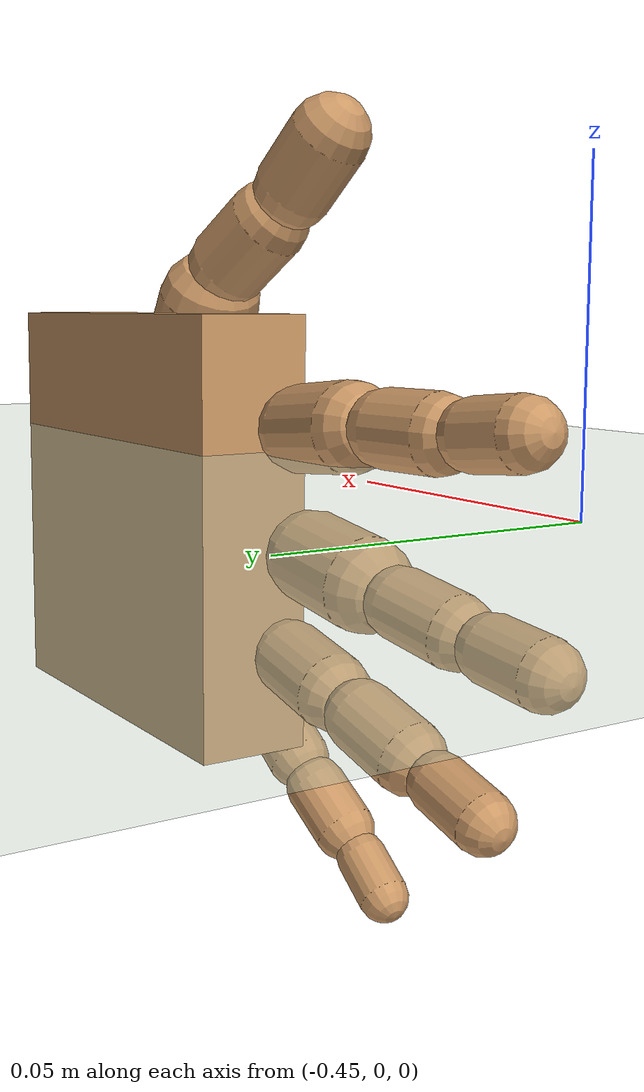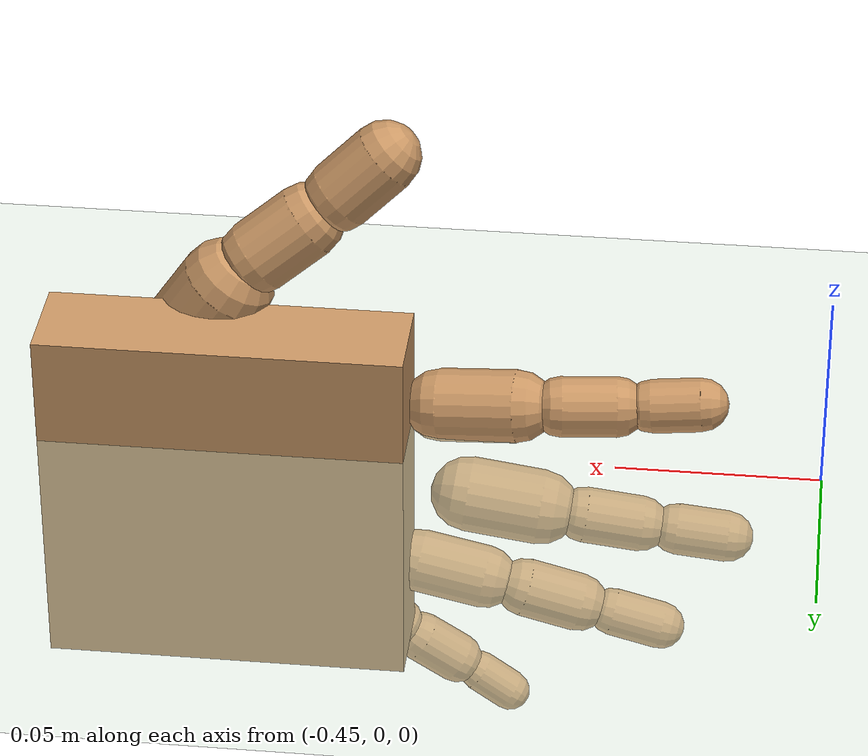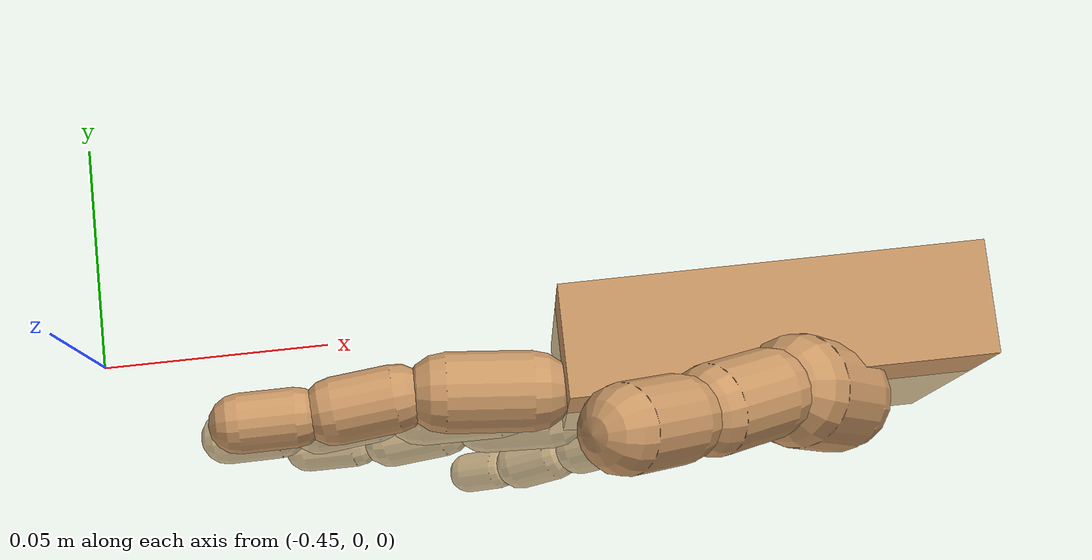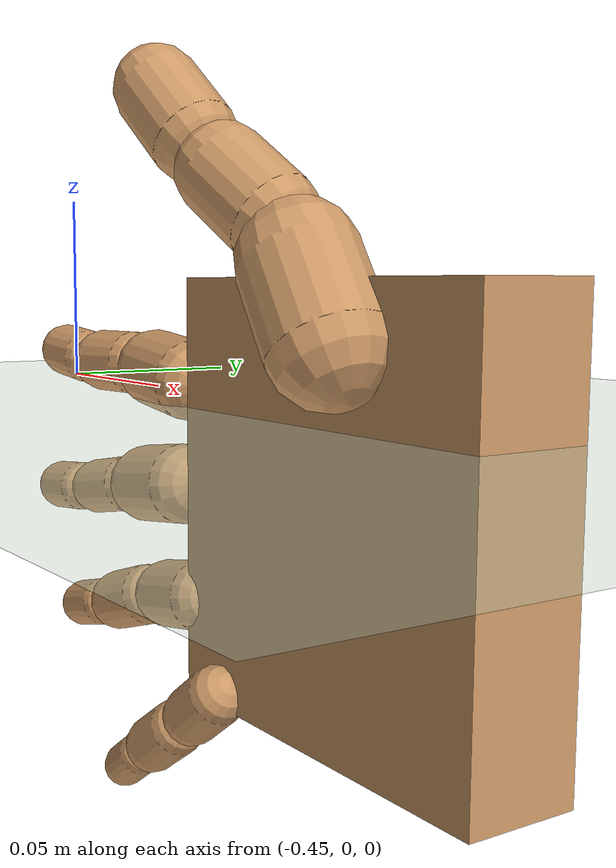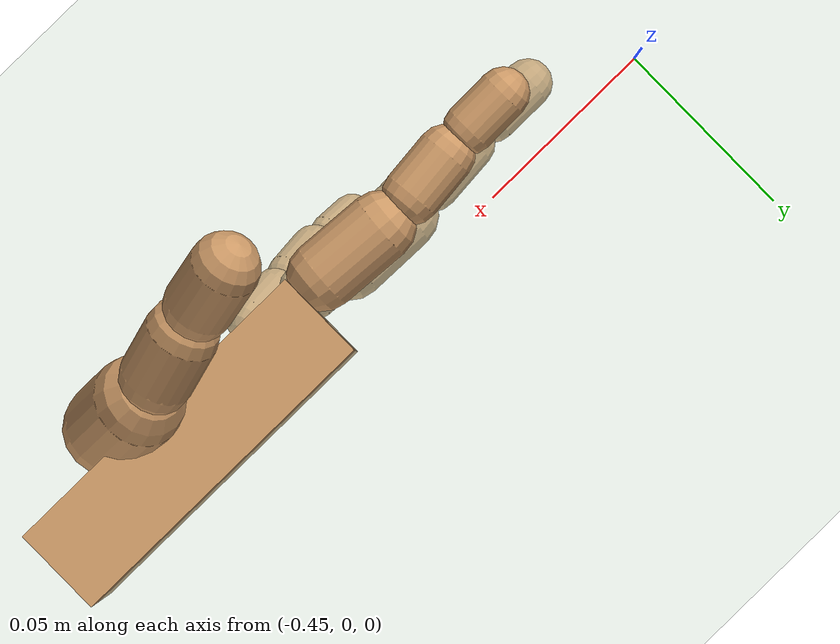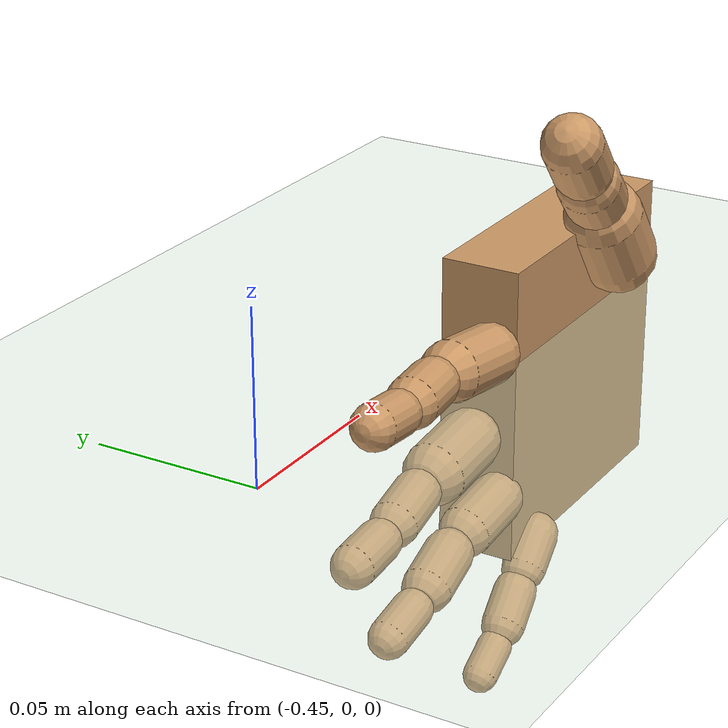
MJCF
<mujoco model="humanoid">
  <compiler coordinate="local"/>
  <default>
    <joint damping="0.0" armature="0.01" stiffness="0.0" limited="true"/>
    <geom conaffinity="1" condim="3" contype="7" margin="0.001" rgba="0.8 0.6 .4 1"/>
  </default>
  <asset>
    <texture type="skybox" builtin="gradient" rgb1=".4 .5 .6" rgb2="0 0 0" width="100" height="100"/>
    <texture builtin="flat" height="1278" mark="cross" markrgb="1 1 1" name="texgeom" random="0.01" rgb1="0.8 0.6 0.4" rgb2="0.8 0.6 0.4" type="cube" width="127"/>
    <texture builtin="checker" height="100" name="texplane" rgb1="0 0 0" rgb2="0.8 0.8 0.8" type="2d" width="100"/>
    <material name="MatPlane" reflectance="0.5" shininess="1" specular="1" texrepeat="60 60" texture="texplane"/>
    <material name="geom" texture="texgeom" texuniform="true"/>
  </asset>
  <worldbody>
    <light cutoff="100" diffuse="1 1 1" dir="-0 0 -1.3" directional="true" exponent="1" pos="0 0 1.3" specular=".1 .1 .1"/>
    <geom conaffinity="1" condim="3" name="floor" pos="0 0 0" rgba="0.8 0.9 0.8 1" size="100 100 .2" type="plane" material="MatPlane"/>
      <body name="R_Wrist" pos="-0.2493 -0.0045 -0.0153">
        <joint name="R_Wrist_x" type="hinge" pos="0 0 0" axis="1 0 0" user="100 1 1 150 1 1" armature="0.01" range="-180.0000 180.0000" damping="0" stiffness="0"/>
        <joint name="R_Wrist_y" type="hinge" pos="0 0 0" axis="0 1 0" user="100 1 1 150 1 1" armature="0.01" range="-180.0000 180.0000" damping="0" stiffness="0"/>
        <joint name="R_Wrist_z" type="hinge" pos="0 0 0" axis="0 0 1" user="100 1 1 150 1 1" armature="0.01" range="-180.0000 180.0000" damping="0" stiffness="0"/>
        <geom type="box" pos="-0.0537 -0.0044 -0.0029" size="0.0454 0.0122 0.046" quat="1.0000 0.0000 0.0000 0.0000" density="1230.822844" name="R_Wrist"/>
        <body name="R_Index1" pos="-0.0999 -0.0118 0.0196">
          <joint name="R_Index1_x" type="hinge" pos="0 0 0" axis="1 0 0" user="100 10 1 150" armature="0.01" range="-180.0000 180.0000" damping="0" stiffness="0"/>
          <joint name="R_Index1_y" type="hinge" pos="0 0 0" axis="0 1 0" user="100 10 1 150" armature="0.01" range="-180.0000 180.0000" damping="0" stiffness="0"/>
          <joint name="R_Index1_z" type="hinge" pos="0 0 0" axis="0 0 1" user="100 10 1 150" armature="0.01" range="-180.0000 180.0000" damping="0" stiffness="0"/>
          <geom type="capsule" contype="1" conaffinity="1" density="1000" fromto="-0.0064 0.0004 0.0006 -0.0256 0.0018 0.0024" size="0.0091" name="R_Index1"/>
          <body name="R_Index2" pos="-0.0319 0.0022 0.003">
            <joint name="R_Index2_x" type="hinge" pos="0 0 0" axis="1 0 0" user="100 10 1 150" armature="0.01" range="-180.0000 180.0000" damping="0" stiffness="0"/>
            <joint name="R_Index2_y" type="hinge" pos="0 0 0" axis="0 1 0" user="100 10 1 150" armature="0.01" range="-180.0000 180.0000" damping="0" stiffness="0"/>
            <joint name="R_Index2_z" type="hinge" pos="0 0 0" axis="0 0 1" user="100 10 1 150" armature="0.01" range="-180.0000 180.0000" damping="0" stiffness="0"/>
            <geom type="capsule" contype="1" conaffinity="1" density="1000" fromto="-0.0045 -0.0005 0.0000 -0.0180 -0.0019 0.0000" size="0.0076" name="R_Index2"/>
            <body name="R_Index3" pos="-0.0225 -0.0023 0.0001">
              <joint name="R_Index3_x" type="hinge" pos="0 0 0" axis="1 0 0" user="100 10 1 150" armature="0.01" range="-180.0000 180.0000" damping="0" stiffness="0"/>
              <joint name="R_Index3_y" type="hinge" pos="0 0 0" axis="0 1 0" user="100 10 1 150" armature="0.01" range="-180.0000 180.0000" damping="0" stiffness="0"/>
              <joint name="R_Index3_z" type="hinge" pos="0 0 0" axis="0 0 1" user="100 10 1 150" armature="0.01" range="-180.0000 180.0000" damping="0" stiffness="0"/>
              <geom type="capsule" contype="1" conaffinity="1" density="1000" fromto="-0.0041 -0.0001 0.0004 -0.0164 -0.0003 0.0016" size="0.0067" name="R_Index3"/>
            </body>
          </body>
        </body>
        <body name="R_Middle1" pos="-0.1074 -0.0094 -0.0037">
          <joint name="R_Middle1_x" type="hinge" pos="0 0 0" axis="1 0 0" user="100 10 1 150" armature="0.01" range="-180.0000 180.0000" damping="0" stiffness="0"/>
          <joint name="R_Middle1_y" type="hinge" pos="0 0 0" axis="0 1 0" user="100 10 1 150" armature="0.01" range="-180.0000 180.0000" damping="0" stiffness="0"/>
          <joint name="R_Middle1_z" type="hinge" pos="0 0 0" axis="0 0 1" user="100 10 1 150" armature="0.01" range="-180.0000 180.0000" damping="0" stiffness="0"/>
          <geom type="capsule" contype="1" conaffinity="1" density="1000" fromto="-0.0061 0.0002 -0.0008 -0.0245 0.0006 -0.0032" size="0.0094" name="R_Middle1"/>
          <body name="R_Middle2" pos="-0.0306 0.0008 -0.004">
            <joint name="R_Middle2_x" type="hinge" pos="0 0 0" axis="1 0 0" user="100 10 1 150" armature="0.01" range="-180.0000 180.0000" damping="0" stiffness="0"/>
            <joint name="R_Middle2_y" type="hinge" pos="0 0 0" axis="0 1 0" user="100 10 1 150" armature="0.01" range="-180.0000 180.0000" damping="0" stiffness="0"/>
            <joint name="R_Middle2_z" type="hinge" pos="0 0 0" axis="0 0 1" user="100 10 1 150" armature="0.01" range="-180.0000 180.0000" damping="0" stiffness="0"/>
            <geom type="capsule" contype="1" conaffinity="1" density="1000" fromto="-0.0047 -0.0004 -0.0008 -0.0188 -0.0016 -0.0033" size="0.007" name="R_Middle2"/>
            <body name="R_Middle3" pos="-0.0235 -0.002 -0.0041">
              <joint name="R_Middle3_x" type="hinge" pos="0 0 0" axis="1 0 0" user="100 10 1 150" armature="0.01" range="-180.0000 180.0000" damping="0" stiffness="0"/>
              <joint name="R_Middle3_y" type="hinge" pos="0 0 0" axis="0 1 0" user="100 10 1 150" armature="0.01" range="-180.0000 180.0000" damping="0" stiffness="0"/>
              <joint name="R_Middle3_z" type="hinge" pos="0 0 0" axis="0 0 1" user="100 10 1 150" armature="0.01" range="-180.0000 180.0000" damping="0" stiffness="0"/>
              <geom type="capsule" contype="1" conaffinity="1" density="1000" fromto="-0.0043 -0.0000 -0.0004 -0.0172 -0.0000 -0.0017" size="0.0064" name="R_Middle3"/>
            </body>
          </body>
        </body>
        <body name="R_Pinky1" pos="-0.082 -0.0176 -0.0435">
          <joint name="R_Pinky1_x" type="hinge" pos="0 0 0" axis="1 0 0" user="100 10 1 150" armature="0.01" range="-180.0000 180.0000" damping="0" stiffness="0"/>
          <joint name="R_Pinky1_y" type="hinge" pos="0 0 0" axis="0 1 0" user="100 10 1 150" armature="0.01" range="-180.0000 180.0000" damping="0" stiffness="0"/>
          <joint name="R_Pinky1_z" type="hinge" pos="0 0 0" axis="0 0 1" user="100 10 1 150" armature="0.01" range="-180.0000 180.0000" damping="0" stiffness="0"/>
          <geom type="capsule" contype="1" conaffinity="1" density="1000" fromto="-0.0031 -0.0002 -0.0024 -0.0124 -0.0009 -0.0096" size="0.0067" name="R_Pinky1"/>
          <body name="R_Pinky2" pos="-0.0155 -0.0011 -0.012">
            <joint name="R_Pinky2_x" type="hinge" pos="0 0 0" axis="1 0 0" user="100 10 1 150" armature="0.01" range="-180.0000 180.0000" damping="0" stiffness="0"/>
            <joint name="R_Pinky2_y" type="hinge" pos="0 0 0" axis="0 1 0" user="100 10 1 150" armature="0.01" range="-180.0000 180.0000" damping="0" stiffness="0"/>
            <joint name="R_Pinky2_z" type="hinge" pos="0 0 0" axis="0 0 1" user="100 10 1 150" armature="0.01" range="-180.0000 180.0000" damping="0" stiffness="0"/>
            <geom type="capsule" contype="1" conaffinity="1" density="1000" fromto="-0.0031 -0.0003 -0.0022 -0.0124 -0.0013 -0.0090" size="0.0065" name="R_Pinky2"/>
            <body name="R_Pinky3" pos="-0.0155 -0.0017 -0.0112">
              <joint name="R_Pinky3_x" type="hinge" pos="0 0 0" axis="1 0 0" user="100 10 1 150" armature="0.01" range="-180.0000 180.0000" damping="0" stiffness="0"/>
              <joint name="R_Pinky3_y" type="hinge" pos="0 0 0" axis="0 1 0" user="100 10 1 150" armature="0.01" range="-180.0000 180.0000" damping="0" stiffness="0"/>
              <joint name="R_Pinky3_z" type="hinge" pos="0 0 0" axis="0 0 1" user="100 10 1 150" armature="0.01" range="-180.0000 180.0000" damping="0" stiffness="0"/>
              <geom type="capsule" contype="1" conaffinity="1" density="1000" fromto="-0.0027 0.0001 -0.0018 -0.0108 0.0003 -0.0074" size="0.0052" name="R_Pinky3"/>
            </body>
          </body>
        </body>
        <body name="R_Ring1" pos="-0.0954 -0.0124 -0.0271">
          <joint name="R_Ring1_x" type="hinge" pos="0 0 0" axis="1 0 0" user="100 10 1 150" armature="0.01" range="-180.0000 180.0000" damping="0" stiffness="0"/>
          <joint name="R_Ring1_y" type="hinge" pos="0 0 0" axis="0 1 0" user="100 10 1 150" armature="0.01" range="-180.0000 180.0000" damping="0" stiffness="0"/>
          <joint name="R_Ring1_z" type="hinge" pos="0 0 0" axis="0 0 1" user="100 10 1 150" armature="0.01" range="-180.0000 180.0000" damping="0" stiffness="0"/>
          <geom type="capsule" contype="1" conaffinity="1" density="1000" fromto="-0.0056 0.0003 -0.0011 -0.0224 0.0012 -0.0042" size="0.008" name="R_Ring1"/>
          <body name="R_Ring2" pos="-0.028 0.0015 -0.0053">
            <joint name="R_Ring2_x" type="hinge" pos="0 0 0" axis="1 0 0" user="100 10 1 150" armature="0.01" range="-180.0000 180.0000" damping="0" stiffness="0"/>
            <joint name="R_Ring2_y" type="hinge" pos="0 0 0" axis="0 1 0" user="100 10 1 150" armature="0.01" range="-180.0000 180.0000" damping="0" stiffness="0"/>
            <joint name="R_Ring2_z" type="hinge" pos="0 0 0" axis="0 0 1" user="100 10 1 150" armature="0.01" range="-180.0000 180.0000" damping="0" stiffness="0"/>
            <geom type="capsule" contype="1" conaffinity="1" density="1000" fromto="-0.0046 -0.0003 -0.0014 -0.0183 -0.0012 -0.0057" size="0.0074" name="R_Ring2"/>
            <body name="R_Ring3" pos="-0.0228 -0.0015 -0.0071">
              <joint name="R_Ring3_x" type="hinge" pos="0 0 0" axis="1 0 0" user="100 10 1 150" armature="0.01" range="-180.0000 180.0000" damping="0" stiffness="0"/>
              <joint name="R_Ring3_y" type="hinge" pos="0 0 0" axis="0 1 0" user="100 10 1 150" armature="0.01" range="-180.0000 180.0000" damping="0" stiffness="0"/>
              <joint name="R_Ring3_z" type="hinge" pos="0 0 0" axis="0 0 1" user="100 10 1 150" armature="0.01" range="-180.0000 180.0000" damping="0" stiffness="0"/>
              <geom type="capsule" contype="1" conaffinity="1" density="1000" fromto="-0.0042 0.0001 -0.0010 -0.0167 0.0004 -0.0041" size="0.006" name="R_Ring3"/>
            </body>
          </body>
        </body>
        <body name="R_Thumb1" pos="-0.0386 -0.0211 0.0259">
          <joint name="R_Thumb1_x" type="hinge" pos="0 0 0" axis="1 0 0" user="100 10 1 150" armature="0.01" range="-180.0000 180.0000" damping="0" stiffness="0"/>
          <joint name="R_Thumb1_y" type="hinge" pos="0 0 0" axis="0 1 0" user="100 10 1 150" armature="0.01" range="-180.0000 180.0000" damping="0" stiffness="0"/>
          <joint name="R_Thumb1_z" type="hinge" pos="0 0 0" axis="0 0 1" user="100 10 1 150" armature="0.01" range="-180.0000 180.0000" damping="0" stiffness="0"/>
          <geom type="capsule" contype="1" conaffinity="1" density="1000" fromto="-0.0034 0.0002 0.0050 -0.0136 0.0008 0.0200" size="0.012" name="R_Thumb1"/>
          <body name="R_Thumb2" pos="-0.017 0.001 0.025">
            <joint name="R_Thumb2_x" type="hinge" pos="0 0 0" axis="1 0 0" user="100 10 1 150" armature="0.01" range="-180.0000 180.0000" damping="0" stiffness="0"/>
            <joint name="R_Thumb2_y" type="hinge" pos="0 0 0" axis="0 1 0" user="100 10 1 150" armature="0.01" range="-180.0000 180.0000" damping="0" stiffness="0"/>
            <joint name="R_Thumb2_z" type="hinge" pos="0 0 0" axis="0 0 1" user="100 10 1 150" armature="0.01" range="-180.0000 180.0000" damping="0" stiffness="0"/>
            <geom type="capsule" contype="1" conaffinity="1" density="1000" fromto="-0.0041 -0.0010 0.0031 -0.0164 -0.0041 0.0124" size="0.0095" name="R_Thumb2"/>
            <body name="R_Thumb3" pos="-0.0205 -0.0052 0.0155">
              <joint name="R_Thumb3_x" type="hinge" pos="0 0 0" axis="1 0 0" user="100 10 1 150" armature="0.01" range="-180.0000 180.0000" damping="0" stiffness="0"/>
              <joint name="R_Thumb3_y" type="hinge" pos="0 0 0" axis="0 1 0" user="100 10 1 150" armature="0.01" range="-180.0000 180.0000" damping="0" stiffness="0"/>
              <joint name="R_Thumb3_z" type="hinge" pos="0 0 0" axis="0 0 1" user="100 10 1 150" armature="0.01" range="-180.0000 180.0000" damping="0" stiffness="0"/>
              <geom type="capsule" contype="1" conaffinity="1" density="1000" fromto="-0.0037 -0.0006 0.0035 -0.0148 -0.0025 0.0140" size="0.009" name="R_Thumb3"/>
            </body>
          </body>
        </body>
      </body>
  </worldbody>
  <actuator>
    <motor name="R_Wrist_x" joint="R_Wrist_x" gear="1"/>
    <motor name="R_Wrist_y" joint="R_Wrist_y" gear="1"/>
    <motor name="R_Wrist_z" joint="R_Wrist_z" gear="1"/>
    <motor name="R_Index1_x" joint="R_Index1_x" gear="1"/>
    <motor name="R_Index1_y" joint="R_Index1_y" gear="1"/>
    <motor name="R_Index1_z" joint="R_Index1_z" gear="1"/>
    <motor name="R_Index2_x" joint="R_Index2_x" gear="1"/>
    <motor name="R_Index2_y" joint="R_Index2_y" gear="1"/>
    <motor name="R_Index2_z" joint="R_Index2_z" gear="1"/>
    <motor name="R_Index3_x" joint="R_Index3_x" gear="1"/>
    <motor name="R_Index3_y" joint="R_Index3_y" gear="1"/>
    <motor name="R_Index3_z" joint="R_Index3_z" gear="1"/>
    <motor name="R_Middle1_x" joint="R_Middle1_x" gear="1"/>
    <motor name="R_Middle1_y" joint="R_Middle1_y" gear="1"/>
    <motor name="R_Middle1_z" joint="R_Middle1_z" gear="1"/>
    <motor name="R_Middle2_x" joint="R_Middle2_x" gear="1"/>
    <motor name="R_Middle2_y" joint="R_Middle2_y" gear="1"/>
    <motor name="R_Middle2_z" joint="R_Middle2_z" gear="1"/>
    <motor name="R_Middle3_x" joint="R_Middle3_x" gear="1"/>
    <motor name="R_Middle3_y" joint="R_Middle3_y" gear="1"/>
    <motor name="R_Middle3_z" joint="R_Middle3_z" gear="1"/>
    <motor name="R_Pinky1_x" joint="R_Pinky1_x" gear="1"/>
    <motor name="R_Pinky1_y" joint="R_Pinky1_y" gear="1"/>
    <motor name="R_Pinky1_z" joint="R_Pinky1_z" gear="1"/>
    <motor name="R_Pinky2_x" joint="R_Pinky2_x" gear="1"/>
    <motor name="R_Pinky2_y" joint="R_Pinky2_y" gear="1"/>
    <motor name="R_Pinky2_z" joint="R_Pinky2_z" gear="1"/>
    <motor name="R_Pinky3_x" joint="R_Pinky3_x" gear="1"/>
    <motor name="R_Pinky3_y" joint="R_Pinky3_y" gear="1"/>
    <motor name="R_Pinky3_z" joint="R_Pinky3_z" gear="1"/>
    <motor name="R_Ring1_x" joint="R_Ring1_x" gear="1"/>
    <motor name="R_Ring1_y" joint="R_Ring1_y" gear="1"/>
    <motor name="R_Ring1_z" joint="R_Ring1_z" gear="1"/>
    <motor name="R_Ring2_x" joint="R_Ring2_x" gear="1"/>
    <motor name="R_Ring2_y" joint="R_Ring2_y" gear="1"/>
    <motor name="R_Ring2_z" joint="R_Ring2_z" gear="1"/>
    <motor name="R_Ring3_x" joint="R_Ring3_x" gear="1"/>
    <motor name="R_Ring3_y" joint="R_Ring3_y" gear="1"/>
    <motor name="R_Ring3_z" joint="R_Ring3_z" gear="1"/>
    <motor name="R_Thumb1_x" joint="R_Thumb1_x" gear="1"/>
    <motor name="R_Thumb1_y" joint="R_Thumb1_y" gear="1"/>
    <motor name="R_Thumb1_z" joint="R_Thumb1_z" gear="1"/>
    <motor name="R_Thumb2_x" joint="R_Thumb2_x" gear="1"/>
    <motor name="R_Thumb2_y" joint="R_Thumb2_y" gear="1"/>
    <motor name="R_Thumb2_z" joint="R_Thumb2_z" gear="1"/>
    <motor name="R_Thumb3_x" joint="R_Thumb3_x" gear="1"/>
    <motor name="R_Thumb3_y" joint="R_Thumb3_y" gear="1"/>
    <motor name="R_Thumb3_z" joint="R_Thumb3_z" gear="1"/>
  </actuator>
  <sensor>
    <framelinvel name="sensor_R_Wrist_framelinvel" objtype="xbody" objname="R_Wrist"/>
    <framelinvel name="sensor_R_Index1_framelinvel" objtype="xbody" objname="R_Index1"/>
    <framelinvel name="sensor_R_Index2_framelinvel" objtype="xbody" objname="R_Index2"/>
    <framelinvel name="sensor_R_Index3_framelinvel" objtype="xbody" objname="R_Index3"/>
    <framelinvel name="sensor_R_Middle1_framelinvel" objtype="xbody" objname="R_Middle1"/>
    <framelinvel name="sensor_R_Middle2_framelinvel" objtype="xbody" objname="R_Middle2"/>
    <framelinvel name="sensor_R_Middle3_framelinvel" objtype="xbody" objname="R_Middle3"/>
    <framelinvel name="sensor_R_Pinky1_framelinvel" objtype="xbody" objname="R_Pinky1"/>
    <framelinvel name="sensor_R_Pinky2_framelinvel" objtype="xbody" objname="R_Pinky2"/>
    <framelinvel name="sensor_R_Pinky3_framelinvel" objtype="xbody" objname="R_Pinky3"/>
    <framelinvel name="sensor_R_Ring1_framelinvel" objtype="xbody" objname="R_Ring1"/>
    <framelinvel name="sensor_R_Ring2_framelinvel" objtype="xbody" objname="R_Ring2"/>
    <framelinvel name="sensor_R_Ring3_framelinvel" objtype="xbody" objname="R_Ring3"/>
    <framelinvel name="sensor_R_Thumb1_framelinvel" objtype="xbody" objname="R_Thumb1"/>
    <framelinvel name="sensor_R_Thumb2_framelinvel" objtype="xbody" objname="R_Thumb2"/>
    <framelinvel name="sensor_R_Thumb3_framelinvel" objtype="xbody" objname="R_Thumb3"/>
    <frameangvel name="sensor_R_Wrist_frameangvel" objtype="xbody" objname="R_Wrist"/>
    <frameangvel name="sensor_R_Index1_frameangvel" objtype="xbody" objname="R_Index1"/>
    <frameangvel name="sensor_R_Index2_frameangvel" objtype="xbody" objname="R_Index2"/>
    <frameangvel name="sensor_R_Index3_frameangvel" objtype="xbody" objname="R_Index3"/>
    <frameangvel name="sensor_R_Middle1_frameangvel" objtype="xbody" objname="R_Middle1"/>
    <frameangvel name="sensor_R_Middle2_frameangvel" objtype="xbody" objname="R_Middle2"/>
    <frameangvel name="sensor_R_Middle3_frameangvel" objtype="xbody" objname="R_Middle3"/>
    <frameangvel name="sensor_R_Pinky1_frameangvel" objtype="xbody" objname="R_Pinky1"/>
    <frameangvel name="sensor_R_Pinky2_frameangvel" objtype="xbody" objname="R_Pinky2"/>
    <frameangvel name="sensor_R_Pinky3_frameangvel" objtype="xbody" objname="R_Pinky3"/>
    <frameangvel name="sensor_R_Ring1_frameangvel" objtype="xbody" objname="R_Ring1"/>
    <frameangvel name="sensor_R_Ring2_frameangvel" objtype="xbody" objname="R_Ring2"/>
    <frameangvel name="sensor_R_Ring3_frameangvel" objtype="xbody" objname="R_Ring3"/>
    <frameangvel name="sensor_R_Thumb1_frameangvel" objtype="xbody" objname="R_Thumb1"/>
    <frameangvel name="sensor_R_Thumb2_frameangvel" objtype="xbody" objname="R_Thumb2"/>
    <frameangvel name="sensor_R_Thumb3_frameangvel" objtype="xbody" objname="R_Thumb3"/>
  </sensor>
  <size njmax="700" nconmax="700"/>
</mujoco>
